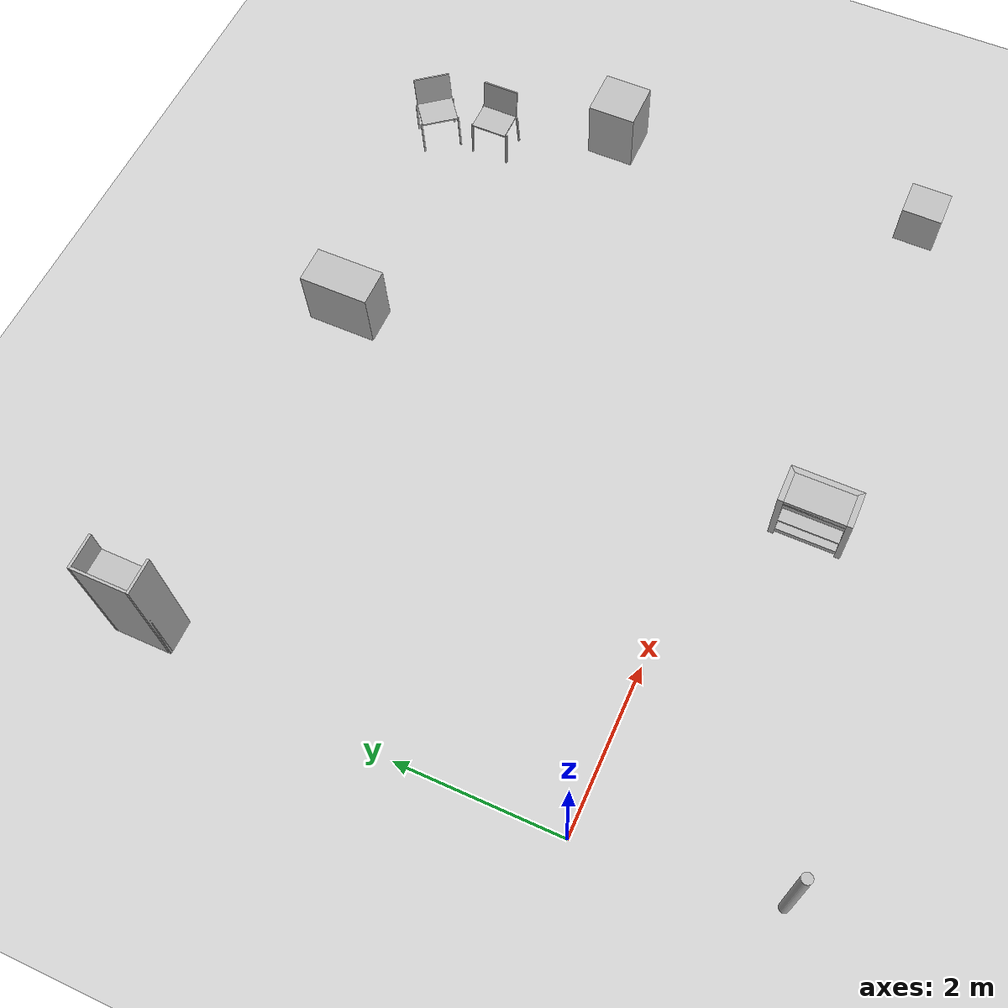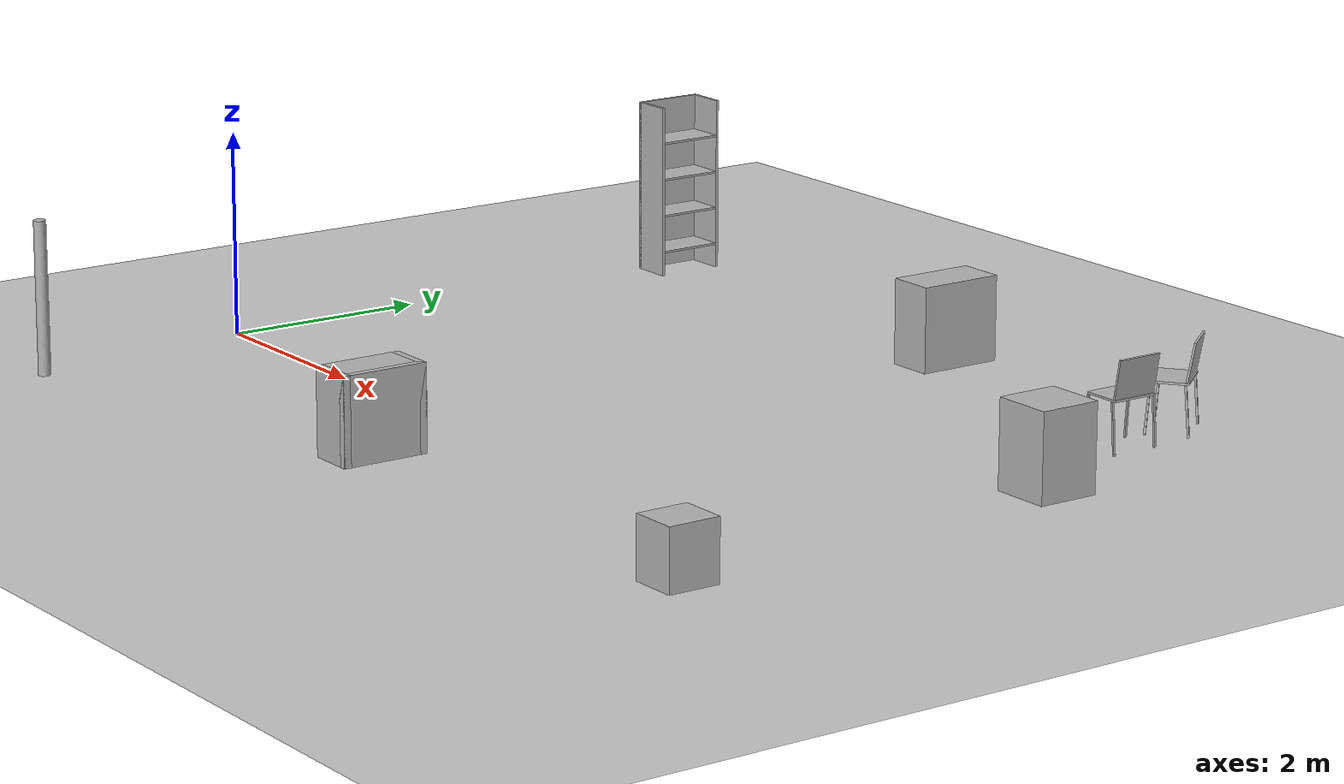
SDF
<sdf version="1.6">
 <world name="rwc2023">
  <include><name>floor</name><uri>model://ground_plane</uri></include>
  <include>
   <name>bedside_table</name>
   <uri>model://rwc2023/bedside_table</uri>
   <pose>8.79 -1.05 0 0 0 3.14</pose>
  </include>
  <include><name>dishwasher</name><uri>model://rwc2023/dishwasher</uri><pose>8.6 3 0 0 0 3.14</pose></include>
  <include><name>chair1</name><uri>model://rwc2023/chair</uri><pose>7.9 4.45 0 0 0 3.14</pose></include>
  <include><name>chair2</name><uri>model://rwc2023/chair</uri><pose>7.75 5.2 0 0 0 3.8</pose></include>
  <include>
   <name>kitchen_shelf</name>
   <uri>model://rwc2023/kitchen_shelf</uri>
   <pose>4.78 4.99 0 0 0 0</pose>
  </include>
  <include><name>cabinet</name><uri>model://rwc2023/cabinet</uri><pose>4.3 -1.14 0 0 0 3.14</pose></include>
  <include><name>coatrack</name><uri>model://rwc2023/coatrack</uri><pose>0.25 -2.25 0 0 0 3.14</pose></include>
  <include><name>bookshelf</name><uri>model://rwc2023/bookshelf</uri><pose>0.3 5.1 0 0 0 0.0</pose></include>
  <light type="directional" name="sun">
   <pose>0 0 10 0 0 0</pose>
   <diffuse>0.8 0.8 0.8 1</diffuse>
   <specular>0.2 0.2 0.2 1</specular>
   <direction>0.5 0.1 -0.9</direction>
   <attenuation>
    <range>1000</range>
    <constant>0.9</constant>
    <linear>0.01</linear>
    <quadratic>0.001</quadratic>
   </attenuation>
  </light>
  <model name="living_room" type="room">
   <link name="in">
    <virtual_volume name="in_vv"><geometry><box><size>4.5 5.45 2.5</size></box></geometry></virtual_volume>
   </link>
   <pose>2.25 3.75 1.25 0 0 0</pose>
   <static>true</static>
  </model>
  <model name="kitchen" type="room">
   <link name="in">
    <virtual_volume name="in_vv"><geometry><box><size>4.47 5.45 2.5</size></box></geometry></virtual_volume>
   </link>
   <pose>6.76 3.75 1.25 0 0 0</pose>
   <static>true</static>
  </model>
  <model name="bedroom" type="room">
   <link name="in">
    <virtual_volume name="in_vv"><geometry><box><size>4.47 3.5 2.5</size></box></geometry></virtual_volume>
   </link>
   <pose>6.75 -0.75 1.25 0 0 0</pose>
   <static>true</static>
  </model>
  <model name="study" type="room">
   <link name="in">
    <virtual_volume name="in_vv"><geometry><box><size>4.47 3.5 2.5</size></box></geometry></virtual_volume>
   </link>
   <pose>2.25 -0.75 1.25 0 0 0</pose>
   <static>true</static>
  </model>
  <model name="initial_pose_receptionist" type="waypoint">
   <pose>1.3 2.0 0 0 0 0</pose>
   <static>true</static>
  </model>
  <model name="receptionist_living_room" type="waypoint">
   <pose>1.8 3.85 0 0 0 0</pose>
   <static>true</static>
  </model>
  <model name="entrance" type="waypoint"><pose>0.5 4 0 0 0 3.14</pose><static>true</static></model>
  <model name="initial_pose" type="waypoint"><pose>0.0 4.0 0 0 0 0</pose><static>true</static></model>
  <model name="starting_pose" type="waypoint"><pose>1.3 4.0 0 0 0 0</pose><static>true</static></model>
  <model name="forbidden_room_waypoint" type="waypoint">
   <pose>5.25 0.25 0 0 0 -0.78</pose>
   <static>true</static>
  </model>
  <model name="stickler_for_rules_starting_point" type="waypoint">
   <pose>6 4 0 0 0 0</pose>
   <static>true</static>
  </model>
  <model name="rips_point_1" type="waypoint">
   <pose>2.5 0.5 0 0 0 -1.57079632679</pose>
   <static>true</static>
  </model>
  <model name="rips_point_2" type="waypoint">
   <pose>2.5 0.75 0 0 0 -1.57079632679</pose>
   <static>true</static>
  </model>
  <model name="rips_point_3" type="waypoint">
   <pose>2.5 1.0 0 0 0 -1.57079632679</pose>
   <static>true</static>
  </model>
  <model name="exit_1_rips" type="waypoint">
   <pose>-0.5 0.0 0 0 0 3.14159265359</pose>
   <static>true</static>
  </model>
  <model name="exit_2_rips" type="waypoint"><pose>0 0.0 0 0 0 3.14159265359</pose><static>true</static></model>
  <model name="exit_3_rips" type="waypoint">
   <pose>0.5 0.0 0 0 0 3.14159265359</pose>
   <static>true</static>
  </model>
  <model name="gpsr_meeting_point" type="waypoint">
   <pose>1.5 4 0 0 0 -1.57079632679</pose>
   <static>true</static>
  </model>
  <model name="gpsr_exit_door_2" type="waypoint"><pose>0 0 0 0 0 3.14</pose><static>true</static></model>
  <physics type="ode">
   <real_time_update_rate>333.0</real_time_update_rate>
   <max_step_size>0.003</max_step_size>
   <ode><solver><type>quick</type><iters>100</iters></solver><constraints><cfm>0.0001</cfm></constraints></ode>
  </physics>
 </world>
</sdf>

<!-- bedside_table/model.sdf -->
<sdf version="1.6">
  <model name="rwc2023/bedroom_small_drawers">
    <static>true</static>
    <link name="1_link">
      <collision name="1_col">
        <geometry>
          <box>
            <size>0.455 0.503 0.575</size>
          </box>
        </geometry>
      </collision>
      <visual name="1_vis">
        <geometry>
          <box>
            <size>0.455 0.503 0.575</size>
          </box>
        </geometry>
      </visual>
      <pose>0.0 0.0 0.2875 0 0 0</pose>
    </link>
    <link name="on_top_of">
      <virtual_volume name="on_top_of_vv">
        <geometry>
          <box>
            <size>0.435 0.443 0.25</size>
          </box>
        </geometry>
        <pose>0.0 0.0 0.72 0 0 0</pose>
      </virtual_volume>
    </link>
    <link name="in_front_of">
      <virtual_volume name="in_front_of_vv">
        <geometry>
          <box>
            <size>0.2 0.303 0.01</size>
          </box>
        </geometry>
        <pose>0.7275 0.0 0.005 0 0 0</pose>
      </virtual_volume>
    </link>
  </model>
</sdf>

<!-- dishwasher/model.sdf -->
<sdf version="1.6">
  <model name="rwc2023/dishwasher">
    <static>true</static>
    <link name="1_link">
      <collision name="1_col">
        <geometry>
          <box>
            <size>0.58 0.6 0.84</size>
          </box>
        </geometry>
      </collision>
      <visual name="1_vis">
        <geometry>
          <box>
            <size>0.58 0.6 0.84</size>
          </box>
        </geometry>
      </visual>
      <pose>0.0 0.0 0.42 0 0 0</pose>
    </link>
    <link name="in_front_of">
      <virtual_volume name="in_front_of_vv">
        <geometry>
          <box>
            <size>0.2 0.4 0.01</size>
          </box>
        </geometry>
        <pose>0.79 0.0 0.005 0 0 0</pose>
      </virtual_volume>
    </link>
    <link name="in_front_of_ctt">
      <virtual_volume name="in_front_of_vv">
        <geometry>
          <box>
            <size>0.2 0.4 0.01</size>
          </box>
        </geometry>
        <pose>1.69 0.0 0.005 0 0 0</pose>
      </virtual_volume>
    </link>
  </model>
</sdf>

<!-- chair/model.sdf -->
<sdf version="1.6">
  <model name="rwc2023/chair">
    <static>true</static>
    <link name="1_link">
      <collision name="1_col">
        <geometry>
          <box>
            <size>0.38 0.46 0.02</size>
          </box>
        </geometry>
      </collision>
      <visual name="1_vis">
        <geometry>
          <box>
            <size>0.38 0.46 0.02</size>
          </box>
        </geometry>
      </visual>
      <pose>0.0 0.0 0.495 0 0 0</pose>
    </link>
    <link name="back_link">
      <collision name="back_col">
        <geometry>
          <box>
            <size>0.38 0.46 0.02</size>
          </box>
        </geometry>
      </collision>
      <visual name="back_vis">
        <geometry>
          <box>
            <size>0.38 0.46 0.02</size>
          </box>
        </geometry>
      </visual>
      <pose>-0.2 0 0.695 0 1.4 0</pose>
    </link>
    <link name="2_link">
      <collision name="2_col">
        <geometry>
          <box>
            <size>0.02 0.02 0.485</size>
          </box>
        </geometry>
      </collision>
      <visual name="2_vis">
        <geometry>
          <box>
            <size>0.02 0.02 0.485</size>
          </box>
        </geometry>
      </visual>
      <pose>-0.18 -0.24 0.2425 0 0.08 0</pose>
    </link>
    <link name="3_link">
      <collision name="3_col">
        <geometry>
          <box>
            <size>0.02 0.02 0.485</size>
          </box>
        </geometry>
      </collision>
      <visual name="3_vis">
        <geometry>
          <box>
            <size>0.02 0.02 0.485</size>
          </box>
        </geometry>
      </visual>
      <pose>0.18 -0.24 0.2425 0 -0.08 0</pose>
    </link>
    <link name="4_link">
      <collision name="4_col">
        <geometry>
          <box>
            <size>0.02 0.02 0.485</size>
          </box>
        </geometry>
      </collision>
      <visual name="4_vis">
        <geometry>
          <box>
            <size>0.02 0.02 0.485</size>
          </box>
        </geometry>
      </visual>
      <pose>-0.18 0.24 0.2425 0 0.08 0</pose>
    </link>
    <link name="5_link">
      <collision name="5_col">
        <geometry>
          <box>
            <size>0.02 0.02 0.485</size>
          </box>
        </geometry>
      </collision>
      <visual name="5_vis">
        <geometry>
          <box>
            <size>0.02 0.02 0.485</size>
          </box>
        </geometry>
      </visual>
      <pose>0.18 0.24 0.2425 0 -0.08 0</pose>
    </link>
    <link name="on_top_of">
      <virtual_volume name="on_top_of_vv">
        <geometry>
          <box>
            <size>0.3 0.4 0.25</size>
          </box>
        </geometry>
        <pose>0.02 0.0 0.65 0 0 0</pose>
      </virtual_volume>
    </link>
    <link name="in_front_of">
      <virtual_volume name="in_front_of_vv">
        <geometry>
          <box>
            <size>0.2 0.26 0.01</size>
          </box>
        </geometry>
        <pose>0.69 0.0 0.005 0 0 0</pose>
      </virtual_volume>
    </link>
  </model>
</sdf>

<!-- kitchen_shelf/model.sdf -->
<sdf version="1.6">
  <model name="rwc2023/kitchen_shelf">
    <static>true</static>
    <link name="1_link">
      <collision name="1_col">
        <geometry>
          <box>
            <size>0.46 0.86 0.84</size>
          </box>
        </geometry>
      </collision>
      <visual name="1_vis">
        <geometry>
          <box>
            <size>0.46 0.86 0.84</size>
          </box>
        </geometry>
      </visual>
      <pose>0.0 0.0 0.42 0 0 0</pose>
    </link>
   </model>
</sdf>

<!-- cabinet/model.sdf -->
<sdf version="1.6">
  <model name="rwc2023/small_cabinet">
    <static>true</static>
    <link name="1_link">
      <collision name="1_col">
        <geometry>
          <box>
            <size>0.46 0.07 0.84</size>
          </box>
        </geometry>
      </collision>
      <visual name="1_vis">
        <geometry>
          <box>
            <size>0.46 0.07 0.84</size>
          </box>
        </geometry>
      </visual>
      <pose>0.0 -0.395 0.42 0 0 0</pose>
    </link>
    <link name="2_link">
      <collision name="2_col">
        <geometry>
          <box>
            <size>0.46 0.07 0.84</size>
          </box>
        </geometry>
      </collision>
      <visual name="2_vis">
        <geometry>
          <box>
            <size>0.46 0.07 0.84</size>
          </box>
        </geometry>
      </visual>
      <pose>0.0 0.395 0.42 0 0 0</pose>
    </link>
    <link name="3_link">
      <collision name="3_col">
        <geometry>
          <box>
            <size>0.07 0.86 0.84</size>
          </box>
        </geometry>
      </collision>
      <visual name="3_vis">
        <geometry>
          <box>
            <size>0.07 0.86 0.84</size>
          </box>
        </geometry>
      </visual>
      <pose>-0.195 0.0 0.42 0 0 0</pose>
    </link>
    <link name="4_link">
      <collision name="4_col">
        <geometry>
          <box>
            <size>0.39 0.72 0.075</size>
          </box>
        </geometry>
      </collision>
      <visual name="4_vis">
        <geometry>
          <box>
            <size>0.39 0.72 0.075</size>
          </box>
        </geometry>
      </visual>
      <pose>0.035 0.0 0.8025 0 0 0</pose>
    </link>
    <link name="5_link">
      <collision name="5_col">
        <geometry>
          <box>
            <size>0.39 0.72 0.07</size>
          </box>
        </geometry>
      </collision>
      <visual name="5_vis">
        <geometry>
          <box>
            <size>0.39 0.72 0.07</size>
          </box>
        </geometry>
      </visual>
      <pose>0.035 0.0 0.105 0 0 0</pose>
    </link>
    <link name="6_link">
      <collision name="6_col">
        <geometry>
          <box>
            <size>0.39 0.72 0.02</size>
          </box>
        </geometry>
      </collision>
      <visual name="6_vis">
        <geometry>
          <box>
            <size>0.39 0.72 0.02</size>
          </box>
        </geometry>
      </visual>
      <pose>0.035 0.0 0.355 0 0 0</pose>
    </link>
    <link name="7_link">
      <collision name="7_col">
        <geometry>
          <box>
            <size>0.39 0.72 0.075</size>
          </box>
        </geometry>
      </collision>
      <visual name="7_vis">
        <geometry>
          <box>
            <size>0.39 0.72 0.075</size>
          </box>
        </geometry>
      </visual>
      <pose>0.035 0.0 0.7325 0 0 0</pose>
    </link>
    <link name="8_link">
      <collision name="8_col">
        <geometry>
          <box>
            <size>0.39 0.72 0.02</size>
          </box>
        </geometry>
      </collision>
      <visual name="8_vis">
        <geometry>
          <box>
            <size>0.39 0.72 0.02</size>
          </box>
        </geometry>
      </visual>
      <pose>0.035 0.0 0.78 0 0 0</pose>
    </link>
    <link name="in_front_of">
      <virtual_volume name="in_front_of_vv">
        <geometry>
          <box>
            <size>0.2 0.66 0.01</size>
          </box>
        </geometry>
        <pose>0.73 0.0 0.005 0 0 0</pose>
      </virtual_volume>
    </link>
    <link name="shelf1">
      <virtual_volume name="shelf1_vv">
        <geometry>
          <box>
            <size>0.37 0.66 0.25</size>
          </box>
        </geometry>
        <pose>0.035 0.0 0.285 0 0 0</pose>
      </virtual_volume>
    </link>
    <link name="shelf2">
      <virtual_volume name="shelf2_vv">
        <geometry>
          <box>
            <size>0.37 0.66 0.25</size>
          </box>
        </geometry>
        <pose>0.035 0.0 0.51 0 0 0</pose>
      </virtual_volume>
    </link>
    <link name="shelf3">
      <virtual_volume name="shelf3_vv">
        <geometry>
          <box>
            <size>0.37 0.66 0.25</size>
          </box>
        </geometry>
        <pose>0.035 0.0 0.915 0 0 0</pose>
      </virtual_volume>
    </link>
    <link name="shelf4">
      <virtual_volume name="shelf4_vv">
        <geometry>
          <box>
            <size>0.37 0.66 0.25</size>
          </box>
        </geometry>
        <pose>0.035 0.0 0.935 0 0 0</pose>
      </virtual_volume>
    </link>
  </model>
</sdf>

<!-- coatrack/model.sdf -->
<sdf version="1.6">
  <model name="rwc2023/coatrack">
    <static>true</static>
    <link name="2_link">
      <collision name="2_col">
        <geometry>
            <cylinder>
                <radius>0.06</radius>
                <length>1.5</length>
            </cylinder>
        </geometry>
      </collision>
      <visual name="2_vis">
        <geometry>
            <cylinder>
                <radius>0.06</radius>
                <length>1.5</length>
            </cylinder>
        </geometry>
      </visual>
      <pose>0.0 0.0 0.75 0 0 0</pose>
    </link>
  </model>
</sdf>

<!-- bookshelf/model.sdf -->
<sdf version="1.6">
  <model name="rwc2023/black_cabinet">
    <static>true</static>
    <link name="1_link">
      <collision name="1_col">
        <geometry>
          <box>
            <size>0.405 0.03 1.755</size>
          </box>
        </geometry>
      </collision>
      <visual name="1_vis">
        <geometry>
          <box>
            <size>0.405 0.03 1.755</size>
          </box>
        </geometry>
      </visual>
      <pose>0.0 -0.3375 0.8775 0 0 0</pose>
    </link>
    <link name="2_link">
      <collision name="2_col">
        <geometry>
          <box>
            <size>0.405 0.03 1.755</size>
          </box>
        </geometry>
      </collision>
      <visual name="2_vis">
        <geometry>
          <box>
            <size>0.405 0.03 1.755</size>
          </box>
        </geometry>
      </visual>
      <pose>0.0 0.3375 0.8775 0 0 0</pose>
    </link>
    <link name="3_link">
      <collision name="3_col">
        <geometry>
          <box>
            <size>0.03 0.705 1.755</size>
          </box>
        </geometry>
      </collision>
      <visual name="3_vis">
        <geometry>
          <box>
            <size>0.03 0.705 1.755</size>
          </box>
        </geometry>
      </visual>
      <pose>-0.1875 0.0 0.8775 0 0 0</pose>
    </link>
    <link name="5_link">
      <collision name="5_col">
        <geometry>
          <box>
            <size>0.375 0.645 0.02</size>
          </box>
        </geometry>
      </collision>
      <visual name="5_vis">
        <geometry>
          <box>
            <size>0.375 0.645 0.02</size>
          </box>
        </geometry>
      </visual>
      <pose>0.015 0.0 0.245 0 0 0</pose>
    </link>
    <link name="6_link">
      <collision name="6_col">
        <geometry>
          <box>
            <size>0.375 0.645 0.02</size>
          </box>
        </geometry>
      </collision>
      <visual name="6_vis">
        <geometry>
          <box>
            <size>0.375 0.645 0.02</size>
          </box>
        </geometry>
      </visual>
      <pose>0.015 0.0 0.625 0 0 0</pose>
    </link>
    <link name="7_link">
      <collision name="7_col">
        <geometry>
          <box>
            <size>0.375 0.645 0.02</size>
          </box>
        </geometry>
      </collision>
      <visual name="7_vis">
        <geometry>
          <box>
            <size>0.375 0.645 0.02</size>
          </box>
        </geometry>
      </visual>
      <pose>0.015 0.0 1.005 0 0 0</pose>
    </link>
    <link name="8_link">
      <collision name="8_col">
        <geometry>
          <box>
            <size>0.375 0.645 0.02</size>
          </box>
        </geometry>
      </collision>
      <visual name="8_vis">
        <geometry>
          <box>
            <size>0.375 0.645 0.02</size>
          </box>
        </geometry>
      </visual>
      <pose>0.015 0.0 1.385 0 0 0</pose>
    </link>
    <link name="in_front_of">
      <virtual_volume name="in_front_of_vv">
        <geometry>
          <box>
            <size>0.2 0.505 0.01</size>
          </box>
        </geometry>
        <pose>0.7025 0.0 0.005 0 0 0</pose>
      </virtual_volume>
    </link>
    <link name="shelf1">
      <virtual_volume name="shelf1_vv">
        <geometry>
          <box>
            <size>0.355 0.585 0.25</size>
          </box>
        </geometry>
        <pose>0.015 0.0 0.4 0 0 0</pose>
      </virtual_volume>
    </link>
    <link name="shelf2">
      <virtual_volume name="shelf2_vv">
        <geometry>
          <box>
            <size>0.355 0.585 0.25</size>
          </box>
        </geometry>
        <pose>0.015 0.0 0.78 0 0 0</pose>
      </virtual_volume>
    </link>
    <link name="shelf3">
      <virtual_volume name="shelf3_vv">
        <geometry>
          <box>
            <size>0.355 0.585 0.25</size>
          </box>
        </geometry>
        <pose>0.015 0.0 1.16 0 0 0</pose>
      </virtual_volume>
    </link>
    <link name="shelf4">
      <virtual_volume name="shelf4_vv">
        <geometry>
          <box>
            <size>0.355 0.585 0.25</size>
          </box>
        </geometry>
        <pose>0.015 0.0 1.54 0 0 0</pose>
      </virtual_volume>
    </link>
  </model>
</sdf>
